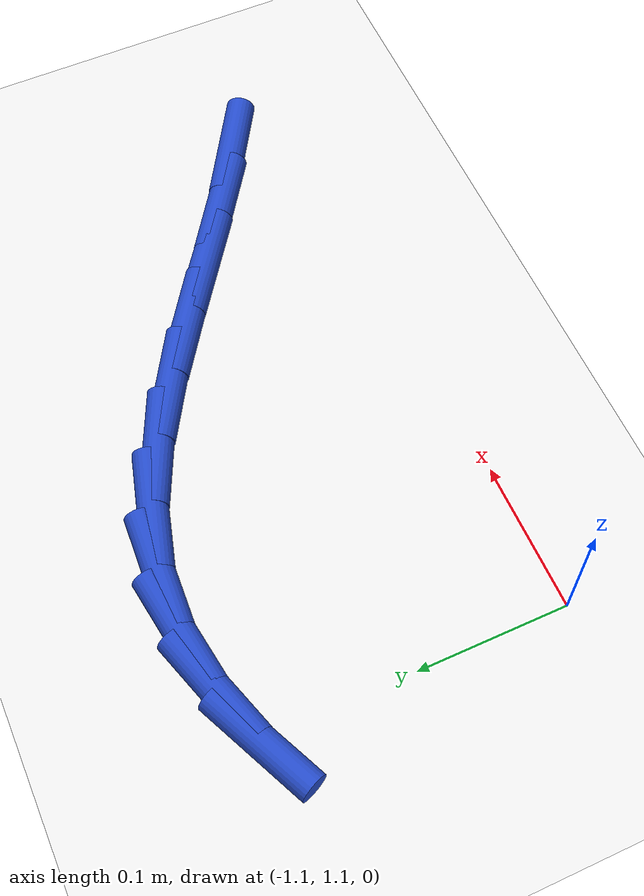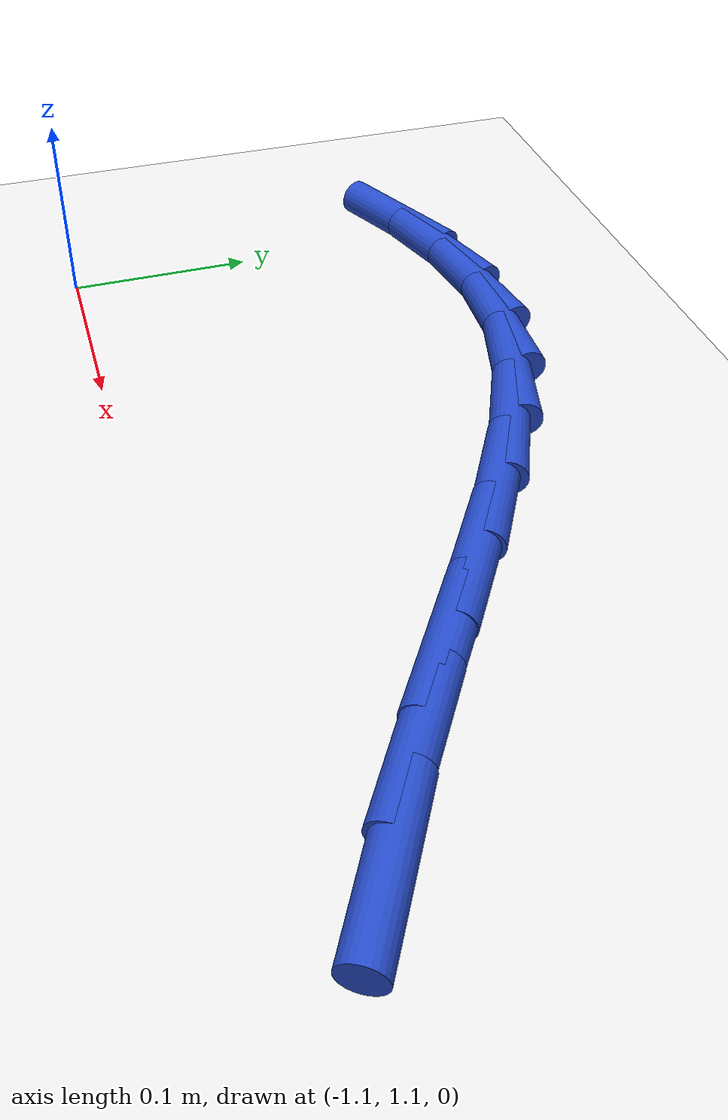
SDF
<sdf version="1.6">
 <world name="default">
  <model name="ground_plane">
   <static>1</static>
   <link name="link">
    <collision name="collision">
     <geometry><plane><normal>0 0 1</normal><size>100 100</size></plane></geometry>
     <surface><friction><ode><mu>100</mu><mu2>50</mu2></ode></friction></surface>
    </collision>
    <visual name="visual">
     <cast_shadows>0</cast_shadows>
     <geometry><plane><normal>0 0 1</normal><size>100 100</size></plane></geometry>
     <material>
      <script><uri>file://media/materials/scripts/gazebo.material</uri><name>Gazebo/WhiteGlow</name></script>
     </material>
    </visual>
   </link>
  </model>
  <model name="line">
   <link name="link_31">
    <pose>-0.7011395254266316 1.1537796350675653 0.01 0 1.57 -0.5468872597294228</pose>
    <collision name="collision">
     <geometry><cylinder><radius>0.01</radius><length>0.08</length></cylinder></geometry>
    </collision>
    <visual name="visual">
     <material>
      <script><name>Gazebo/Blue</name><uri>file://media/materials/scripts/gazebo.material</uri></script>
     </material>
     <geometry><cylinder><radius>0.01</radius><length>0.08</length></cylinder></geometry>
    </visual>
   </link>
   <link name="link_32">
    <pose>-0.7440093925834049 1.1798801196226523 0.01 0 1.57 -0.5975890508575826</pose>
    <collision name="collision">
     <geometry><cylinder><radius>0.01</radius><length>0.08</length></cylinder></geometry>
    </collision>
    <visual name="visual">
     <material>
      <script><name>Gazebo/Blue</name><uri>file://media/materials/scripts/gazebo.material</uri></script>
     </material>
     <geometry><cylinder><radius>0.01</radius><length>0.08</length></cylinder></geometry>
    </visual>
   </link>
   <link name="link_33">
    <pose>-0.7856049434894453 1.2081901868539202 0.01 0 1.57 -0.6142105241046814</pose>
    <collision name="collision">
     <geometry><cylinder><radius>0.01</radius><length>0.08</length></cylinder></geometry>
    </collision>
    <visual name="visual">
     <material>
      <script><name>Gazebo/Blue</name><uri>file://media/materials/scripts/gazebo.material</uri></script>
     </material>
     <geometry><cylinder><radius>0.01</radius><length>0.08</length></cylinder></geometry>
    </visual>
   </link>
   <link name="link_34">
    <pose>-0.826195899625606 1.23681512031787 0.01 0 1.57 -0.5961971515108322</pose>
    <collision name="collision">
     <geometry><cylinder><radius>0.01</radius><length>0.08</length></cylinder></geometry>
    </collision>
    <visual name="visual">
     <material>
      <script><name>Gazebo/Blue</name><uri>file://media/materials/scripts/gazebo.material</uri></script>
     </material>
     <geometry><cylinder><radius>0.01</radius><length>0.08</length></cylinder></geometry>
    </visual>
   </link>
   <link name="link_35">
    <pose>-0.8660519824727396 1.2638602035710034 0.01 0 1.57 -0.5392231969492912</pose>
    <collision name="collision">
     <geometry><cylinder><radius>0.01</radius><length>0.08</length></cylinder></geometry>
    </collision>
    <visual name="visual">
     <material>
      <script><name>Gazebo/Blue</name><uri>file://media/materials/scripts/gazebo.material</uri></script>
     </material>
     <geometry><cylinder><radius>0.01</radius><length>0.08</length></cylinder></geometry>
    </visual>
   </link>
   <link name="link_36">
    <pose>-0.9054429135116993 1.2874307201698223 0.01 0 1.57 -0.43473994715595793</pose>
    <collision name="collision">
     <geometry><cylinder><radius>0.01</radius><length>0.08</length></cylinder></geometry>
    </collision>
    <visual name="visual">
     <material>
      <script><name>Gazebo/Blue</name><uri>file://media/materials/scripts/gazebo.material</uri></script>
     </material>
     <geometry><cylinder><radius>0.01</radius><length>0.08</length></cylinder></geometry>
    </visual>
   </link>
   <link name="link_37">
    <pose>-0.9446384142233379 1.3056319536708278 0.01 0 1.57 -0.27163131892643644</pose>
    <collision name="collision">
     <geometry><cylinder><radius>0.01</radius><length>0.08</length></cylinder></geometry>
    </collision>
    <visual name="visual">
     <material>
      <script><name>Gazebo/Blue</name><uri>file://media/materials/scripts/gazebo.material</uri></script>
     </material>
     <geometry><cylinder><radius>0.01</radius><length>0.08</length></cylinder></geometry>
    </visual>
   </link>
   <link name="link_38">
    <pose>-0.9839082060885083 1.3165691876305219 0.01 0 1.57 -0.05703351998115613</pose>
    <collision name="collision">
     <geometry><cylinder><radius>0.01</radius><length>0.08</length></cylinder></geometry>
    </collision>
    <visual name="visual">
     <material>
      <script><name>Gazebo/Blue</name><uri>file://media/materials/scripts/gazebo.material</uri></script>
     </material>
     <geometry><cylinder><radius>0.01</radius><length>0.08</length></cylinder></geometry>
    </visual>
   </link>
   <link name="link_39">
    <pose>-1.0234781739367724 1.3188284523761604 0.01 0 1.57 0.14503146356662466</pose>
    <collision name="collision">
     <geometry><cylinder><radius>0.01</radius><length>0.08</length></cylinder></geometry>
    </collision>
    <visual name="visual">
     <material>
      <script><name>Gazebo/Blue</name><uri>file://media/materials/scripts/gazebo.material</uri></script>
     </material>
     <geometry><cylinder><radius>0.01</radius><length>0.08</length></cylinder></geometry>
    </visual>
   </link>
   <link name="link_40">
    <pose>-1.063391555785844 1.3129988250553801 0.01 0 1.57 0.3080580746111416</pose>
    <collision name="collision">
     <geometry><cylinder><radius>0.01</radius><length>0.08</length></cylinder></geometry>
    </collision>
    <visual name="visual">
     <material>
      <script><name>Gazebo/Blue</name><uri>file://media/materials/scripts/gazebo.material</uri></script>
     </material>
     <geometry><cylinder><radius>0.01</radius><length>0.08</length></cylinder></geometry>
    </visual>
   </link>
   <link name="link_41">
    <pose>-1.1036440275535844 1.3001909857494907 0.01 0 1.57 0.4312453069823611</pose>
    <collision name="collision">
     <geometry><cylinder><radius>0.01</radius><length>0.08</length></cylinder></geometry>
    </collision>
    <visual name="visual">
     <material>
      <script><name>Gazebo/Blue</name><uri>file://media/materials/scripts/gazebo.material</uri></script>
     </material>
     <geometry><cylinder><radius>0.01</radius><length>0.08</length></cylinder></geometry>
    </visual>
   </link>
  </model>
 </world>
</sdf>
